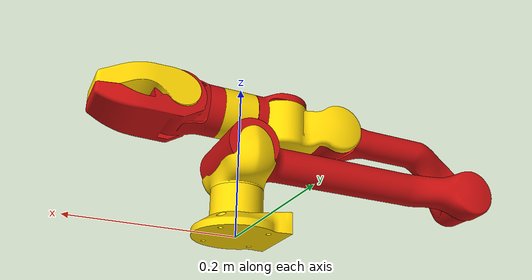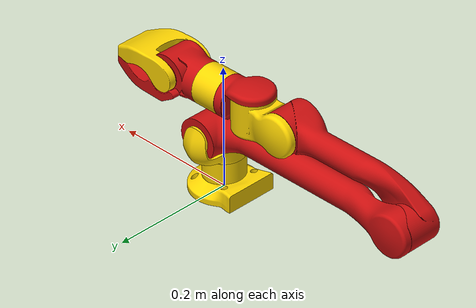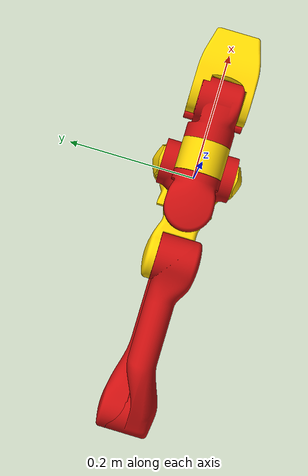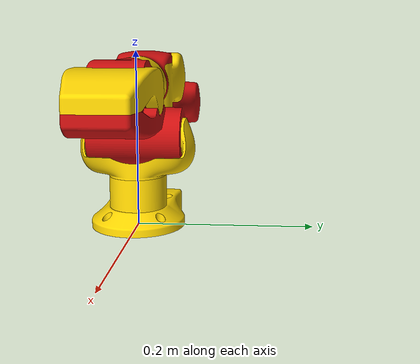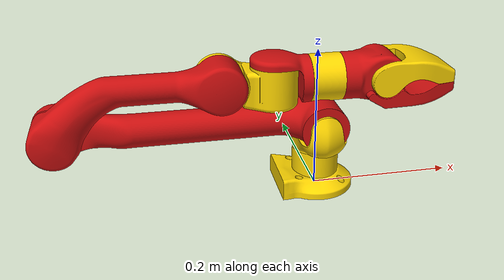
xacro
<?xml version="1.0"?>
<robot name="z1_model" xmlns:xacro="http://www.ros.org/wiki/xacro">

  <xacro:include filename="z1_arm_macro.urdf.xacro"/>
  <xacro:arg name="UnitreeGripper" default="true"/>

  <!-- "Земля" для standalone-режима -->
  <link name="world"/>

  <!-- Z1 крепится к world (как и в старом файле) -->
  <xacro:z1_arm prefix=""
                parent="world"
                xyz="0 0 0" rpy="0 0 0"
                use_gripper="$(arg UnitreeGripper)"/>

  <!-- Блок ros2_control + плагин gz_ros2_control. В standalone их можно
       подключать прямо здесь, так как других контроллеров в модели нет. -->
  <xacro:z1_ros2_control prefix="" use_gripper="$(arg UnitreeGripper)"/>

  <gazebo>
    <plugin name="gz_ros2_control::GazeboSimROS2ControlPlugin"
            filename="gz_ros2_control-system">
      <parameters>$(find z1_model)/config/z1_controllers.yaml</parameters>
      <ros>
        <namespace>/z1</namespace>
      </ros>
    </plugin>
  </gazebo>

</robot>

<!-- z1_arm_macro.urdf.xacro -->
<robot xmlns:xacro="http://www.ros.org/wiki/xacro">

  <!-- Параметры и материалы Z1 -->
  <xacro:include filename="const.xacro"/>
  <xacro:include filename="materials.xacro"/>
  <xacro:include filename="transmission.xacro"/>

  <xacro:macro name="z1_arm"
               params="prefix:='' parent:='world' xyz:='0 0 0' rpy:='0 0 0'
                       use_gripper:=true">

    <!-- Жёсткое крепление link00 к parent (заменяет старый base_static_joint от world). -->
    <joint name="${prefix}base_static_joint" type="fixed">
      <origin xyz="${xyz}" rpy="${rpy}"/>
      <parent link="${parent}"/>
      <child  link="${prefix}link00"/>
    </joint>

    <link name="${prefix}link00">
      <visual>
        <origin rpy="0 0 0" xyz="0 0 0"/>
        <geometry>
          <mesh filename="$(find z1_model)/meshes/visual/z1_Link00.dae" scale="1 1 1"/>
        </geometry>
        <material name="iron_gold"/>
      </visual>
      <collision>
        <geometry>
          <cylinder length="${motor_height}" radius="${motor_diameter}"/>
        </geometry>
        <origin rpy="0 0 0" xyz="0 0 ${motor_height/2.0}"/>
      </collision>
      <inertial>
        <origin rpy="0 0 0" xyz="${L00_ComX} ${L00_ComY} ${L00_ComZ}"/>
        <mass value="${L00_Mass}"/>
        <inertia ixx="${L00_Ixx}" ixy="${L00_Ixy}" ixz="${L00_Ixz}"
                 iyy="${L00_Iyy}" iyz="${L00_Iyz}" izz="${L00_Izz}"/>
      </inertial>
    </link>

    <joint name="${prefix}joint1" type="revolute">
      <origin rpy="0 0 0" xyz="0 0 0.0585"/>
      <parent link="${prefix}link00"/>
      <child  link="${prefix}link01"/>
      <axis xyz="0 0 1"/>
      <dynamics damping="${jointDamping}" friction="${jointFriction}"/>
      <limit effort="${torqueMax}" velocity="${velocityMax}"
             lower="${joint1_PositionMin}" upper="${joint1_PositionMax}"/>
    </joint>

    <link name="${prefix}link01">
      <visual>
        <origin rpy="0 0 0" xyz="0 0 0"/>
        <geometry>
          <mesh filename="$(find z1_model)/meshes/visual/z1_Link01.dae" scale="1 1 1"/>
        </geometry>
        <material name="iron_gold"/>
      </visual>
      <inertial>
        <origin rpy="0 0 0" xyz="${L01_ComX} ${L01_ComY} ${L01_ComZ}"/>
        <mass value="${L01_Mass}"/>
        <inertia ixx="${L01_Ixx}" ixy="${L01_Ixy}" ixz="${L01_Ixz}"
                 iyy="${L01_Iyy}" iyz="${L01_Iyz}" izz="${L01_Izz}"/>
      </inertial>
    </link>

    <joint name="${prefix}joint2" type="revolute">
      <origin rpy="0 0 0" xyz="0 0 0.045"/>
      <parent link="${prefix}link01"/>
      <child  link="${prefix}link02"/>
      <axis xyz="0 1 0"/>
      <dynamics damping="${2*jointDamping}" friction="${2*jointFriction}"/>
      <limit effort="${2*torqueMax}" velocity="${velocityMax}"
             lower="${joint2_PositionMin}" upper="${joint2_PositionMax}"/>
    </joint>

    <link name="${prefix}link02">
      <visual>
        <origin rpy="0 0 0" xyz="0 0 0"/>
        <geometry>
          <mesh filename="$(find z1_model)/meshes/visual/z1_Link02.dae" scale="1 1 1"/>
        </geometry>
        <material name="iron_red"/>
      </visual>
      <collision>
        <geometry><cylinder length="${2.0*motor_height}" radius="${motor_diameter}"/></geometry>
        <origin rpy="${PI/2.0} 0 0" xyz="0 0 0"/>
      </collision>
      <collision>
        <geometry><cylinder length="${arm1_height}" radius="${arm1_diameter}"/></geometry>
        <origin rpy="0 ${PI/2.0} 0" xyz="${-0.045-arm1_height/2.0} 0 0"/>
      </collision>
      <collision>
        <geometry><cylinder length="${motor_height}" radius="${motor_diameter}"/></geometry>
        <origin rpy="${PI/2.0} 0 0" xyz="-0.35 0 0"/>
      </collision>
      <inertial>
        <origin rpy="0 0 0" xyz="${L02_ComX} ${L02_ComY} ${L02_ComZ}"/>
        <mass value="${L02_Mass}"/>
        <inertia ixx="${L02_Ixx}" ixy="${L02_Ixy}" ixz="${L02_Ixz}"
                 iyy="${L02_Iyy}" iyz="${L02_Iyz}" izz="${L02_Izz}"/>
      </inertial>
    </link>

    <joint name="${prefix}joint3" type="revolute">
      <origin rpy="0 0 0" xyz="-0.35 0 0"/>
      <parent link="${prefix}link02"/>
      <child  link="${prefix}link03"/>
      <axis xyz="0 1 0"/>
      <dynamics damping="${jointDamping}" friction="${jointFriction}"/>
      <limit effort="${torqueMax}" velocity="${velocityMax}"
             lower="${joint3_PositionMin}" upper="${joint3_PositionMax}"/>
    </joint>

    <link name="${prefix}link03">
      <visual>
        <origin rpy="0 0 0" xyz="0 0 0"/>
        <geometry>
          <mesh filename="$(find z1_model)/meshes/visual/z1_Link03.dae" scale="1 1 1"/>
        </geometry>
        <material name="iron_red"/>
      </visual>
      <collision>
        <geometry><cylinder length="${arm2_height-0.01}" radius="${arm2_diameter}"/></geometry>
        <origin rpy="0 ${PI/2.0} 0" xyz="${0.065+arm2_height/2.0} 0 0.055"/>
      </collision>
      <collision>
        <geometry><cylinder length="0.059" radius="${motor_diameter}"/></geometry>
        <origin rpy="0 ${PI/2.0} ${PI/2.0}" xyz="${0.065+0.185-0.059/2.0} 0 0.055"/>
      </collision>
      <inertial>
        <origin rpy="0 0 0" xyz="${L03_ComX} ${L03_ComY} ${L03_ComZ}"/>
        <mass value="${L03_Mass}"/>
        <inertia ixx="${L03_Ixx}" ixy="${L03_Ixy}" ixz="${L03_Ixz}"
                 iyy="${L03_Iyy}" iyz="${L03_Iyz}" izz="${L03_Izz}"/>
      </inertial>
    </link>

    <joint name="${prefix}joint4" type="revolute">
      <origin rpy="0 0 0" xyz="0.218 0 0.057"/>
      <parent link="${prefix}link03"/>
      <child  link="${prefix}link04"/>
      <axis xyz="0 1 0"/>
      <dynamics damping="${jointDamping}" friction="${jointFriction}"/>
      <limit effort="${torqueMax}" velocity="${velocityMax}"
             lower="${joint4_PositionMin}" upper="${joint4_PositionMax}"/>
    </joint>

    <link name="${prefix}link04">
      <visual>
        <origin rpy="0 0 0" xyz="0 0 0"/>
        <geometry>
          <mesh filename="$(find z1_model)/meshes/visual/z1_Link04.dae" scale="1 1 1"/>
        </geometry>
        <material name="iron_gold"/>
      </visual>
      <collision>
        <geometry><cylinder length="${motor_height + 2*0.008}" radius="${motor_diameter}"/></geometry>
        <origin rpy="0 0 0" xyz="0.072 0 0"/>
      </collision>
      <inertial>
        <origin rpy="0 0 0" xyz="${L04_ComX} ${L04_ComY} ${L04_ComZ}"/>
        <mass value="${L04_Mass}"/>
        <inertia ixx="${L04_Ixx}" ixy="${L04_Ixy}" ixz="${L04_Ixz}"
                 iyy="${L04_Iyy}" iyz="${L04_Iyz}" izz="${L04_Izz}"/>
      </inertial>
    </link>

    <joint name="${prefix}joint5" type="revolute">
      <origin rpy="0 0 0" xyz="0.07 0.0 0.0"/>
      <parent link="${prefix}link04"/>
      <child  link="${prefix}link05"/>
      <axis xyz="0 0 1"/>
      <dynamics damping="${jointDamping}" friction="${jointFriction}"/>
      <limit effort="${torqueMax}" velocity="${velocityMax}"
             lower="${joint5_PositionMin}" upper="${joint5_PositionMax}"/>
    </joint>

    <link name="${prefix}link05">
      <visual>
        <origin rpy="0 0 0" xyz="0 0 0"/>
        <geometry>
          <mesh filename="$(find z1_model)/meshes/visual/z1_Link05.dae" scale="1 1 1"/>
        </geometry>
        <material name="iron_red"/>
      </visual>
      <inertial>
        <origin rpy="0 0 0" xyz="${L05_ComX} ${L05_ComY} ${L05_ComZ}"/>
        <mass value="${L05_Mass}"/>
        <inertia ixx="${L05_Ixx}" ixy="${L05_Ixy}" ixz="${L05_Ixz}"
                 iyy="${L05_Iyy}" iyz="${L05_Iyz}" izz="${L05_Izz}"/>
      </inertial>
    </link>

    <joint name="${prefix}joint6" type="revolute">
      <origin rpy="0 0 0" xyz="0.0492 0.0 0.0"/>
      <parent link="${prefix}link05"/>
      <child  link="${prefix}link06"/>
      <axis xyz="1 0 0"/>
      <dynamics damping="${jointDamping}" friction="${jointFriction}"/>
      <limit effort="${torqueMax}" velocity="${velocityMax}"
             lower="${joint6_PositionMin}" upper="${joint6_PositionMax}"/>
    </joint>

    <link name="${prefix}link06">
      <visual>
        <origin rpy="0 0 0" xyz="0 0 0"/>
        <geometry>
          <mesh filename="$(find z1_model)/meshes/visual/z1_Link06.dae" scale="1 1 1"/>
        </geometry>
        <material name="iron_gold"/>
      </visual>
      <collision>
        <geometry><cylinder length="${motor_height}" radius="${motor_diameter}"/></geometry>
        <origin rpy="0 ${PI/2.0} 0" xyz="${motor_height/2.0} 0 0"/>
      </collision>
      <inertial>
        <origin rpy="0 0 0" xyz="${L06_ComX} ${L06_ComY} ${L06_ComZ}"/>
        <mass value="${L06_Mass}"/>
        <inertia ixx="${L06_Ixx}" ixy="${L06_Ixy}" ixz="${L06_Ixz}"
                 iyy="${L06_Iyy}" iyz="${L06_Iyz}" izz="${L06_Izz}"/>
      </inertial>
    </link>

    <!-- Захват Unitree (опционально) -->
    <xacro:if value="${use_gripper}">
      <joint name="${prefix}gripperStator_joint" type="fixed">
        <origin rpy="0 0 0" xyz="0.051 0.0 0.0"/>
        <parent link="${prefix}link06"/>
        <child  link="${prefix}gripperStator"/>
      </joint>

      <link name="${prefix}gripperStator">
        <visual>
          <geometry>
            <mesh filename="$(find z1_model)/meshes/visual/stl_models/z1_GripperStator.stl" scale="1 1 1"/>
          </geometry>
          <material name="iron_red"/>
        </visual>
        <collision>
          <geometry>
            <mesh filename="$(find z1_model)/meshes/collision/z1_GripperStator.STL" scale="1 1 1"/>
          </geometry>
        </collision>
        <inertial>
          <origin rpy="0 0 0" xyz="${GripperStator_ComX} ${GripperStator_ComY} ${GripperStator_ComZ}"/>
          <mass value="${GripperStator_Mass}"/>
          <inertia ixx="${GripperStator_Ixx}" ixy="${GripperStator_Ixy}" ixz="${GripperStator_Ixz}"
                   iyy="${GripperStator_Iyy}" iyz="${GripperStator_Iyz}" izz="${GripperStator_Izz}"/>
        </inertial>
      </link>

      <joint name="${prefix}jointGripper" type="revolute">
        <origin rpy="0 0 0" xyz="0.049 0.0 0"/>
        <parent link="${prefix}gripperStator"/>
        <child  link="${prefix}gripperMover"/>
        <axis xyz="0 1 0"/>
        <dynamics damping="${jointDamping}" friction="${jointFriction}"/>
        <limit effort="${torqueMax}" velocity="${velocityMax}"
               lower="${Gripper_PositionMin}" upper="${Gripper_PositionMax}"/>
      </joint>

      <link name="${prefix}gripperMover">
        <visual>
          <geometry>
            <mesh filename="$(find z1_model)/meshes/visual/stl_models/z1_GripperMover.stl" scale="1 1 1"/>
          </geometry>
          <material name="iron_gold"/>
        </visual>
        <collision>
          <geometry>
            <mesh filename="$(find z1_model)/meshes/collision/z1_GripperMover.STL" scale="1 1 1"/>
          </geometry>
        </collision>
        <inertial>
          <origin rpy="0 0 0" xyz="${GripperMover_ComX} ${GripperMover_ComY} ${GripperMover_ComZ}"/>
          <mass value="${GripperMover_Mass}"/>
          <inertia ixx="${GripperMover_Ixx}" ixy="${GripperMover_Ixy}" ixz="${GripperMover_Ixz}"
                   iyy="${GripperMover_Iyy}" iyz="${GripperMover_Iyz}" izz="${GripperMover_Izz}"/>
        </inertial>
      </link>

      <xacro:motorTransmission name="${prefix}Gripper"/>
    </xacro:if>

    <xacro:motorTransmission name="${prefix}1"/>
    <xacro:motorTransmission name="${prefix}2"/>
    <xacro:motorTransmission name="${prefix}3"/>
    <xacro:motorTransmission name="${prefix}4"/>
    <xacro:motorTransmission name="${prefix}5"/>
    <xacro:motorTransmission name="${prefix}6"/>
  </xacro:macro>

  <xacro:macro name="z1_ros2_control"
               params="prefix:='' use_gripper:=true name:=Z1GazeboSystem">
    <ros2_control name="${name}" type="system">
      <hardware>
        <plugin>gz_ros2_control/GazeboSimSystem</plugin>
      </hardware>

      <xacro:joint_controller name="${prefix}joint1" initial_position="0.0"/>
      <xacro:joint_controller name="${prefix}joint2" initial_position="0.0"/>
      <xacro:joint_controller name="${prefix}joint3" initial_position="-0.035"/>
      <xacro:joint_controller name="${prefix}joint4" initial_position="-1.047"/>
      <xacro:joint_controller name="${prefix}joint5" initial_position="0.0"/>
      <xacro:joint_controller name="${prefix}joint6" initial_position="0.0"/>

      <xacro:if value="${use_gripper}">
        <xacro:joint_controller name="${prefix}jointGripper" initial_position="0.0"/>
      </xacro:if>
    </ros2_control>
  </xacro:macro>

  <!-- Локальный макрос-обёртка для регистрации одного джойнта в ros2_control.
       Effort-интерфейс в командах + position/velocity/effort в стейте. -->
  <xacro:macro name="joint_controller" params="name initial_position">
    <joint name="${name}">
      <command_interface name="effort">
        <param name="min">-33</param>
        <param name="max">33</param>
      </command_interface>
      <state_interface name="position">
        <param name="initial_value">${initial_position}</param>
      </state_interface>
      <state_interface name="velocity"/>
      <state_interface name="effort"/>
    </joint>
  </xacro:macro>

</robot>

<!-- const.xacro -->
<!-- name="z1_model" -->
<robot xmlns:xacro="http://www.ros.org/wiki/xacro">

    <!-- Constants for robot dimensions -->
    <xacro:property name="PI" value="3.1415926535897931"/>

    <!-- Link 00 -->
    <xacro:property name="L00_Mass" value="0.47247481"/>
    <xacro:property name="L00_ComX" value="-0.00334984"/>
    <xacro:property name="L00_ComY" value="-0.00013615"/>
    <xacro:property name="L00_ComZ" value="0.02495843"/>
    <xacro:property name="L00_Ixx" value="0.00037937"/>
    <xacro:property name="L00_Ixy" value="-0.00000035"/>
    <xacro:property name="L00_Ixz" value="-0.00001037"/>
    <xacro:property name="L00_Iyy" value="0.00041521"/>
    <xacro:property name="L00_Iyz" value="-0.00000099"/>
    <xacro:property name="L00_Izz" value="0.00053066"/>

    <!-- Link 01 -->
    <xacro:property name="L01_Mass" value="0.67332551"/>
    <xacro:property name="L01_ComX" value="0.00000247"/>
    <xacro:property name="L01_ComY" value="-0.00025198"/>
    <xacro:property name="L01_ComZ" value="0.02317169"/>
    <xacro:property name="L01_Ixx" value="0.00128328"/>
    <xacro:property name="L01_Ixy" value="-0.00000006"/>
    <xacro:property name="L01_Ixz" value="-0.00000040"/>
    <xacro:property name="L01_Iyy" value="0.00071931"/>
    <xacro:property name="L01_Iyz" value="0.00000050"/>
    <xacro:property name="L01_Izz" value="0.00083936"/>

    <!-- Link 02 -->
    <xacro:property name="L02_Mass" value="1.19132258"/>
    <xacro:property name="L02_ComX" value="-0.11012601"/>
    <xacro:property name="L02_ComY" value="0.00240029"/>
    <xacro:property name="L02_ComZ" value="0.00158266"/>
    <xacro:property name="L02_Ixx" value="0.00102138"/>
    <xacro:property name="L02_Ixy" value="0.00062358"/>
    <xacro:property name="L02_Ixz" value="0.00000513"/>
    <xacro:property name="L02_Iyy" value="0.02429457"/>
    <xacro:property name="L02_Iyz" value="-0.00000210"/>
    <xacro:property name="L02_Izz" value="0.02466114"/>

    <!-- Link 03 -->
    <xacro:property name="L03_Mass" value="0.83940874"/>
    <xacro:property name="L03_ComX" value="0.10609208"/>
    <xacro:property name="L03_ComY" value="-0.00541815"/>
    <xacro:property name="L03_ComZ" value="0.03476383"/>
    <xacro:property name="L03_Ixx" value="0.00108061"/>
    <xacro:property name="L03_Ixy" value="-0.00008669"/>
    <xacro:property name="L03_Ixz" value="-0.00208102"/>
    <xacro:property name="L03_Iyy" value="0.00954238"/>
    <xacro:property name="L03_Iyz" value="-0.00001332"/>
    <xacro:property name="L03_Izz" value="0.00886621"/>

    <!-- Link 04 -->
    <xacro:property name="L04_Mass" value="0.56404563"/>
    <xacro:property name="L04_ComX" value="0.04366681"/>
    <xacro:property name="L04_ComY" value="0.00364738"/>
    <xacro:property name="L04_ComZ" value="-0.00170192"/>
    <xacro:property name="L04_Ixx" value="0.00031576"/>
    <xacro:property name="L04_Ixy" value="0.00008130"/>
    <xacro:property name="L04_Ixz" value="0.00004091"/>
    <xacro:property name="L04_Iyy" value="0.00092996"/>
    <xacro:property name="L04_Iyz" value="-0.00000596"/>
    <xacro:property name="L04_Izz" value="0.00097912"/>

    <!-- Link 05 -->
    <xacro:property name="L05_Mass" value="0.38938492"/>
    <xacro:property name="L05_ComX" value="0.03121533"/>
    <xacro:property name="L05_ComY" value="0.0"/>
    <xacro:property name="L05_ComZ" value="0.00646316"/>
    <xacro:property name="L05_Ixx" value="0.00017605"/>
    <xacro:property name="L05_Ixy" value="0.00000040"/>
    <xacro:property name="L05_Ixz" value="0.00005689"/>
    <xacro:property name="L05_Iyy" value="0.00055896"/>
    <xacro:property name="L05_Iyz" value="-0.00000013"/>
    <xacro:property name="L05_Izz" value="0.00053860"/>

    <!-- Link 06 -->
    <xacro:property name="L06_Mass" value="0.28875807"/>
    <xacro:property name="L06_ComX" value="0.02415690"/>
    <xacro:property name="L06_ComY" value="-0.00017355"/>
    <xacro:property name="L06_ComZ" value="-0.00143876"/>
    <xacro:property name="L06_Ixx" value="0.00018328"/>
    <xacro:property name="L06_Ixy" value="0.00000122"/>
    <xacro:property name="L06_Ixz" value="0.00000054"/>
    <xacro:property name="L06_Iyy" value="0.00014750"/>
    <xacro:property name="L06_Iyz" value="0.00000008"/>
    <xacro:property name="L06_Izz" value="0.00014680"/>

    <!-- Link Gripper Stator -->
    <xacro:property name="GripperStator_Mass" value="0.52603655"/>
    <xacro:property name="GripperStator_ComX" value="0.04764427"/>
    <xacro:property name="GripperStator_ComY" value="-0.00035819"/>
    <xacro:property name="GripperStator_ComZ" value="-0.00249162"/>
    <xacro:property name="GripperStator_Ixx" value="0.00038683"/>
    <xacro:property name="GripperStator_Ixy" value="-0.00000359"/>
    <xacro:property name="GripperStator_Ixz" value="0.00007662"/>
    <xacro:property name="GripperStator_Iyy" value="0.00068614"/>
    <xacro:property name="GripperStator_Iyz" value="0.00000209"/>
    <xacro:property name="GripperStator_Izz" value="0.00066293"/>

    <!-- Link Gripper Mover -->
    <xacro:property name="GripperMover_Mass" value="0.27621302"/>
    <xacro:property name="GripperMover_ComX" value="0.01320633"/>
    <xacro:property name="GripperMover_ComY" value="0.00476708"/>
    <xacro:property name="GripperMover_ComZ" value="0.00380534"/>
    <xacro:property name="GripperMover_Ixx" value="0.00017716"/>
    <xacro:property name="GripperMover_Ixy" value="0.00001683"/>
    <xacro:property name="GripperMover_Ixz" value="-0.00001786"/>
    <xacro:property name="GripperMover_Iyy" value="0.00026787"/>
    <xacro:property name="GripperMover_Iyz" value="0.00000262"/>
    <xacro:property name="GripperMover_Izz" value="0.00035728"/>

    <!-- joint limits -->
    <xacro:property name="jointDamping" value="1.0"/>
    <xacro:property name="jointFriction" value="1.0"/>

    <xacro:property name="torqueMax" value="30.0"/>
    <xacro:property name="velocityMax" value="3.1415"/>
    <xacro:property name="joint1_PositionMin" value="${-PI*150/180}"/>
    <xacro:property name="joint1_PositionMax" value="${PI*150/180}"/>
    <xacro:property name="joint2_PositionMin" value="0.0"/>
    <xacro:property name="joint2_PositionMax" value="${PI*170/180}"/>
    <xacro:property name="joint3_PositionMin" value="${-PI*165/180}"/>
    <xacro:property name="joint3_PositionMax" value="0.0"/>
    <xacro:property name="joint4_PositionMin" value="${-PI*87/180}"/>
    <xacro:property name="joint4_PositionMax" value="${PI*87/180}"/>
    <xacro:property name="joint5_PositionMin" value="${-PI*77/180}"/>
    <xacro:property name="joint5_PositionMax" value="${PI*77/180}"/>
    <xacro:property name="joint6_PositionMin" value="${-PI*160/180}"/>
    <xacro:property name="joint6_PositionMax" value="${PI*160/180}"/>
    <xacro:property name="Gripper_PositionMin" value="${-PI*90/180}"/>
    <xacro:property name="Gripper_PositionMax" value="0.0"/>

    <!-- collision size -->
    <xacro:property name="motor_diameter" value="${0.065/2.0}"/>
    <xacro:property name="motor_height" value="0.051"/>
    <xacro:property name="arm1_diameter" value="${0.045/2.0}"/>
    <xacro:property name="arm1_height" value="0.235"/>
    <xacro:property name="arm2_diameter" value="${0.04/2.0}"/>
    <xacro:property name="arm2_height" value="0.126"/>
    <xacro:property name="gripperBox_X" value="0."/>
    <xacro:property name="gripperBox_Y" value="0."/>
    <xacro:property name="gripperBox_Z" value="0."/>
</robot>

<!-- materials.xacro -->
<robot xmlns:xacro="http://www.ros.org/wiki/xacro">

    <material name="iron_red">
        <color rgba="0.80 0.06 0.06 1.0"/>
    </material>
    <material name="iron_gold">
        <color rgba="1.00 0.84 0.00 1.0"/>
    </material>

</robot>
